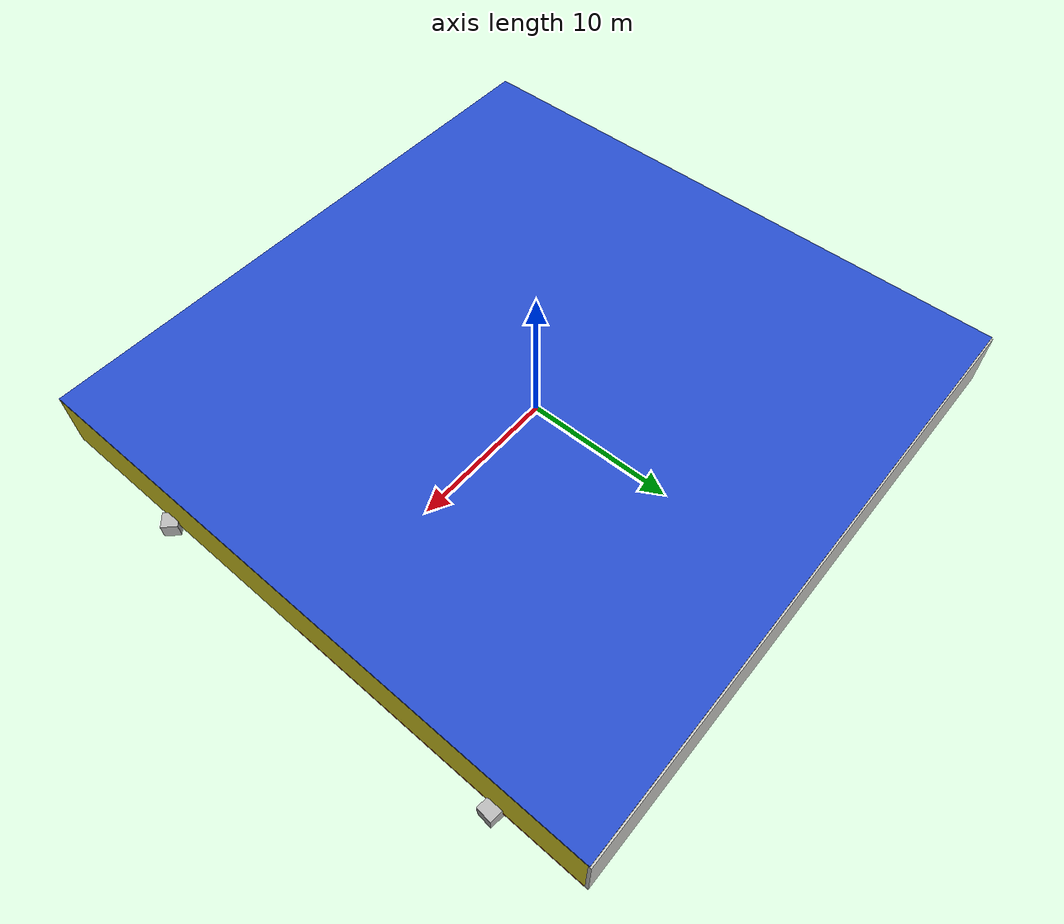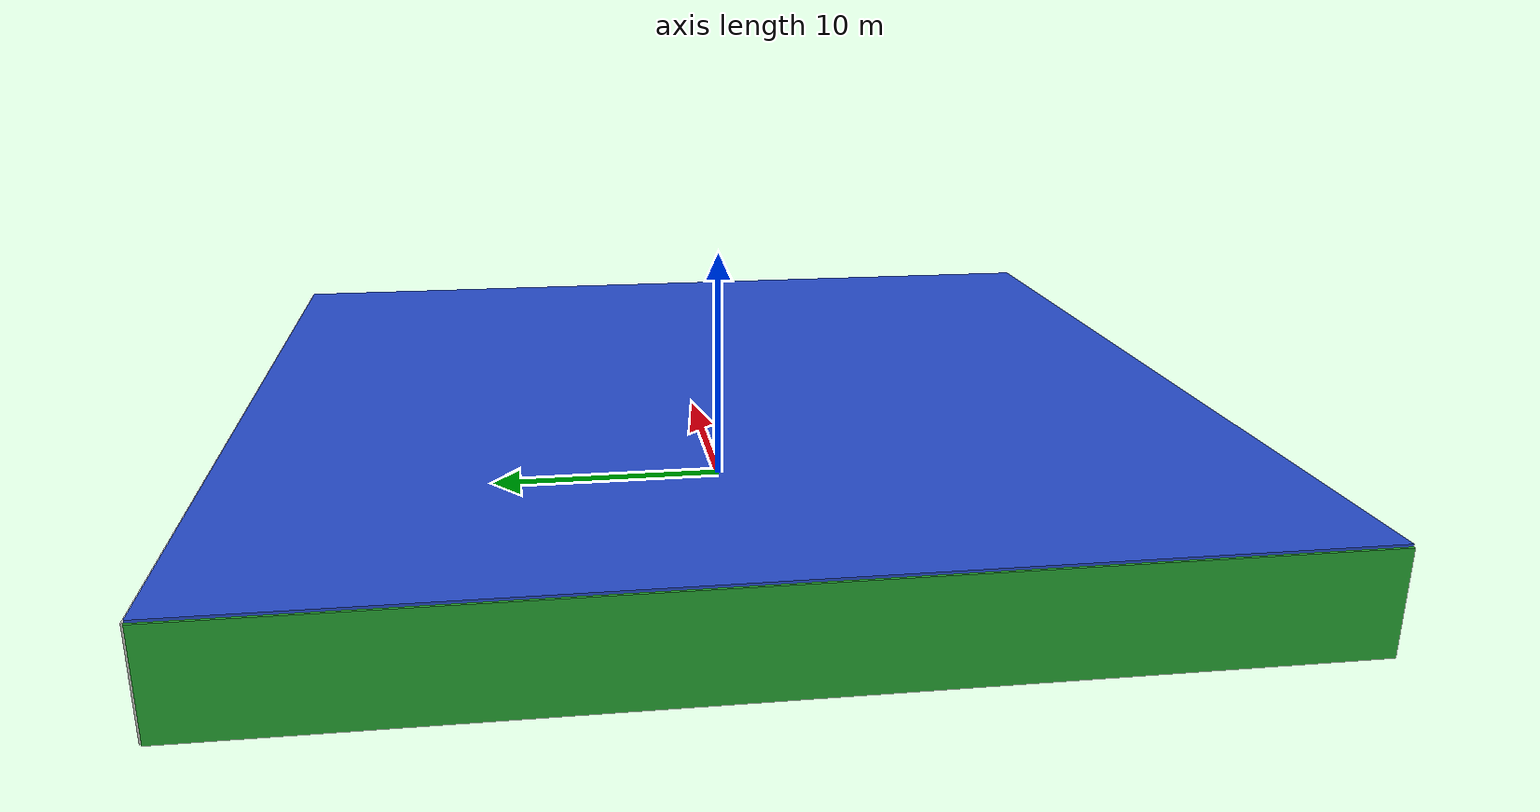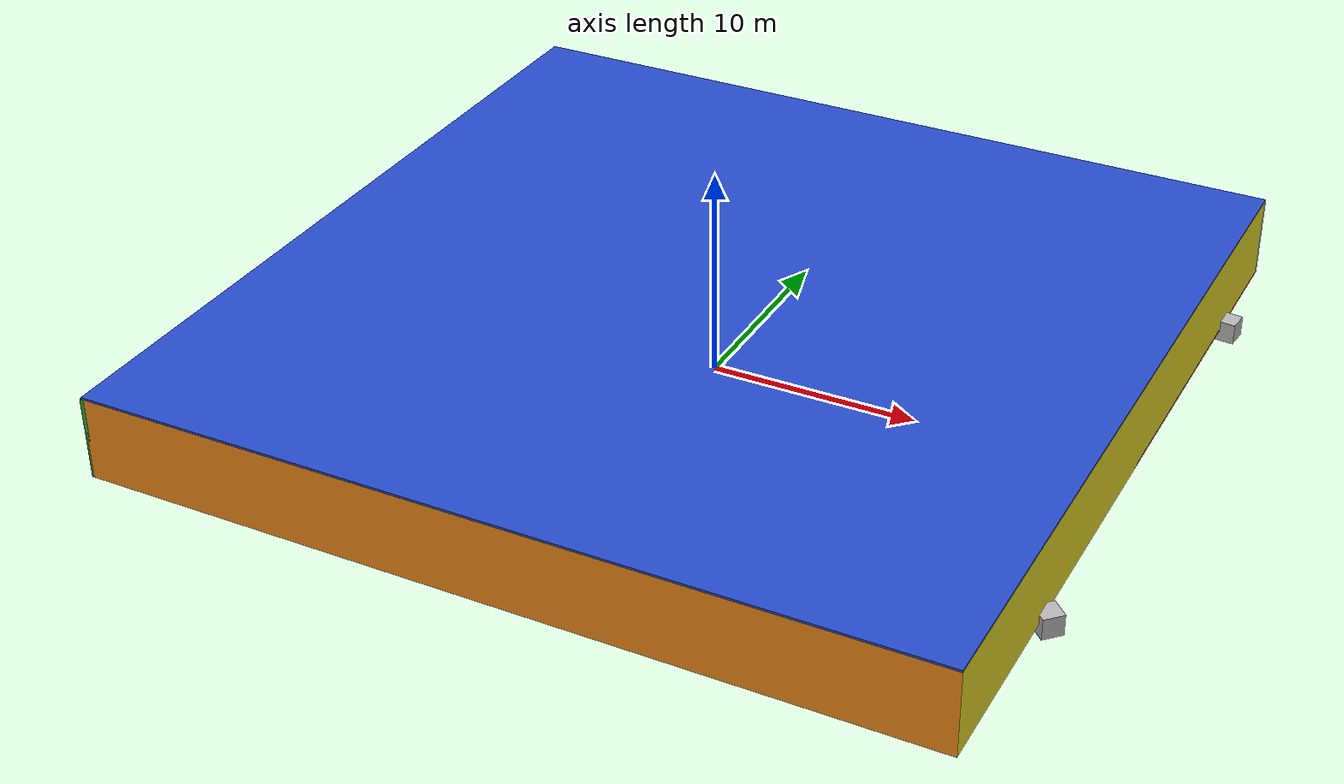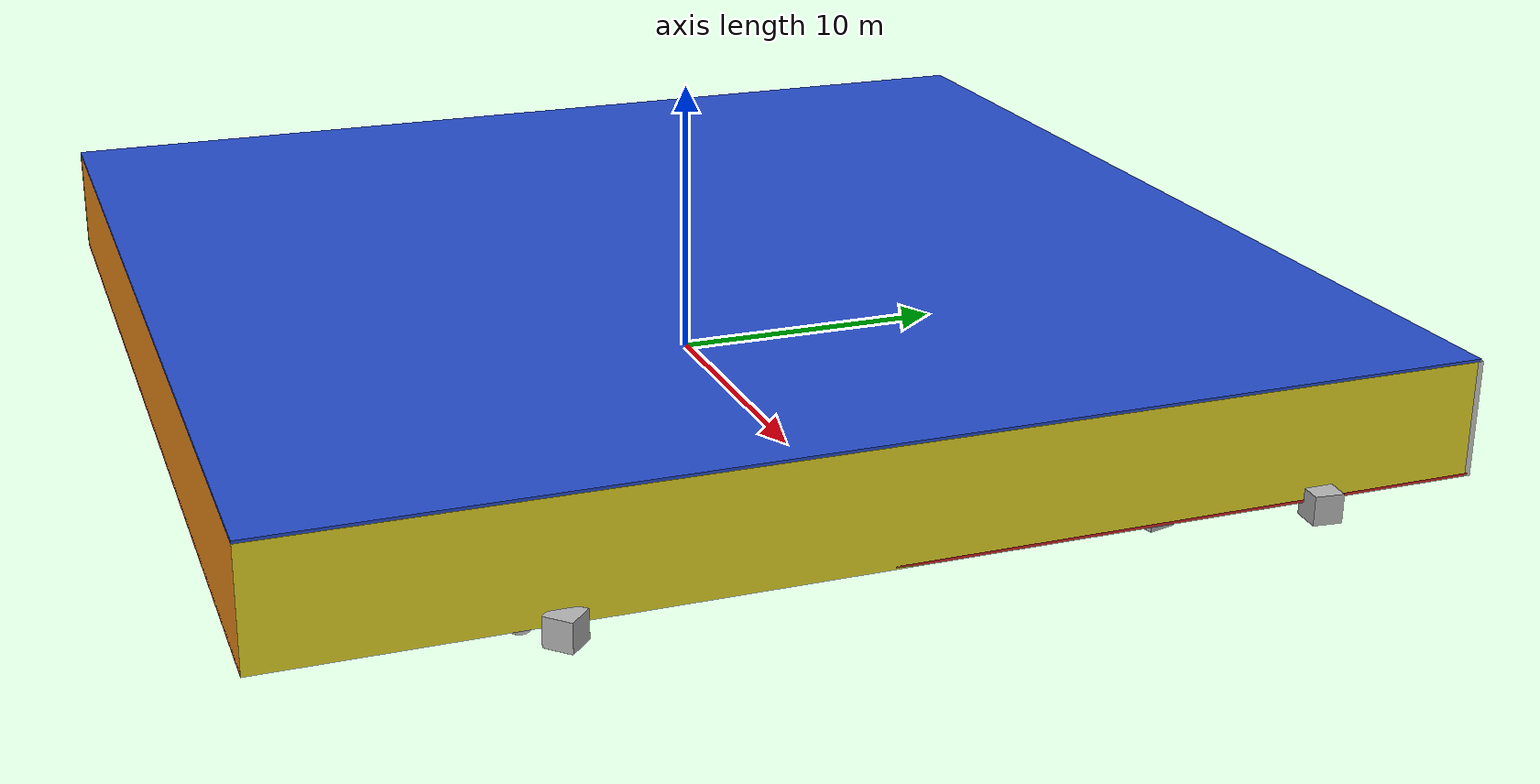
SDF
<sdf version="1.4">
 <world name="default">
  <physics type="ode">
   <max_step_size>0.001</max_step_size>
   <real_time_factor>1</real_time_factor>
   <real_time_update_rate>1000</real_time_update_rate>
   <gravity>0 0 -9.8</gravity>
  </physics>
  <scene><ambient>0.4 0.4 0.4 1</ambient><background>0.7 0.7 0.7 1</background><shadows>1</shadows></scene>
  <model name="Surrounding">
   <static>1</static>
   <link name="Ceiling">
    <collision name="Ceiling_Collision"><geometry><box><size>40 40 0.1</size></box></geometry></collision>
    <visual name="Ceiling_Visual">
     <geometry><box><size>40 40 0.1</size></box></geometry>
     <material>
      <script><uri>file://media/materials/scripts/gazebo.material</uri><name>Gazebo/BlueGlow</name></script>
     </material>
    </visual>
    <pose>0 0 4.05 0 0 0</pose>
   </link>
   <link name="Wall_South">
    <collision name="Wall_South_Collision">
     <geometry><box><size>40 0 4</size></box></geometry>
     <pose>0 0 2 0 -0 0</pose>
    </collision>
    <visual name="Wall_South_Visual">
     <pose>0 0 2 0 -0 0</pose>
     <geometry><box><size>40 0 4</size></box></geometry>
     <material>
      <script><uri>file://media/materials/scripts/gazebo.material</uri><name>Gazebo/Orange</name></script>
     </material>
    </visual>
    <velocity_decay><linear>0</linear><angular>0</angular></velocity_decay>
    <pose>0 -20 0 0 -0 0</pose>
   </link>
   <link name="Wall_East">
    <collision name="Wall_21_Collision">
     <geometry><box><size>40 0 4</size></box></geometry>
     <pose>0 0 2 0 -0 0</pose>
    </collision>
    <visual name="Wall_21_Visual">
     <pose>0 0 2 0 -0 0</pose>
     <geometry><box><size>40 0 4</size></box></geometry>
     <material>
      <script><uri>file://media/materials/scripts/gazebo.material</uri><name>Gazebo/YellowGlow</name></script>
     </material>
    </visual>
    <velocity_decay><linear>0</linear><angular>0</angular></velocity_decay>
    <pose>20 0 0 0 -0 1.5708</pose>
   </link>
   <link name="Wall_North">
    <collision name="Wall_22_Collision">
     <geometry><box><size>40 0.2 4</size></box></geometry>
     <pose>0 0 2 0 -0 0</pose>
    </collision>
    <visual name="Wall_22_Visual">
     <pose>0 0 2 0 -0 0</pose>
     <geometry><box><size>40 0.2 4</size></box></geometry>
     <material>
      <script><uri>file://media/materials/scripts/gazebo.material</uri><name>Gazebo/CeilingTiled</name></script>
     </material>
    </visual>
    <velocity_decay><linear>0</linear><angular>0</angular></velocity_decay>
    <pose>0 20 0 0 -0 0</pose>
   </link>
   <link name="Wall_West">
    <collision name="Wall_23_Collision">
     <geometry><box><size>40 0.2 4</size></box></geometry>
     <pose>0 0 2 0 -0 0</pose>
    </collision>
    <visual name="Wall_23_Visual">
     <pose>0 0 2 0 -0 0</pose>
     <geometry><box><size>40 0.2 4</size></box></geometry>
     <material>
      <script><uri>file://media/materials/scripts/gazebo.material</uri><name>Gazebo/Green</name></script>
     </material>
    </visual>
    <velocity_decay><linear>0</linear><angular>0</angular></velocity_decay>
    <pose>-20 0 0 0 0 -1.5708</pose>
   </link>
   <link name="Ground_link">
    <collision name="collision">
     <pose>0 0 .05 0 -0 0</pose>
     <geometry><box><size>40 40 0.1</size></box></geometry>
    </collision>
    <visual name="visual">
     <pose>0 0 .05 0 -0 0</pose>
     <geometry><box><size>40 40 0.1</size></box></geometry>
     <material>
      <script><uri>file://media/materials/scripts/gazebo.material</uri><name>Gazebo/Red</name></script>
     </material>
    </visual>
   </link>
   <static>1</static>
  </model>
  <spherical_coordinates>
   <surface_model>EARTH_WGS84</surface_model>
   <latitude_deg>0</latitude_deg>
   <longitude_deg>0</longitude_deg>
   <elevation>0</elevation>
   <heading_deg>0</heading_deg>
  </spherical_coordinates>
  <light name="lightball_0" type="diffuse">
   <diffuse>0.8 0.8 0.8 1</diffuse>
   <specular>0.2 0.2 0.2 1</specular>
   <attenuation>
    <range>100</range>
    <constant>0.7</constant>
    <linear>0.01</linear>
    <quadratic>0.001</quadratic>
   </attenuation>
   <direction>-0.5 0.1 -0.9</direction>
   <pose>-18.5070901006 -13.4883615081 3.37679868414 0 0 0</pose>
  </light>
  <light name="lightball_1" type="diffuse">
   <diffuse>0.8 0.8 0.8 1</diffuse>
   <specular>0.2 0.2 0.2 1</specular>
   <attenuation>
    <range>100</range>
    <constant>0.7</constant>
    <linear>0.01</linear>
    <quadratic>0.001</quadratic>
   </attenuation>
   <direction>-0.5 0.1 -0.9</direction>
   <pose>-11.9051198768 3.41816770267 2.30107671199 0 0 0</pose>
  </light>
  <light name="lightball_2" type="diffuse">
   <diffuse>0.8 0.8 0.8 1</diffuse>
   <specular>0.2 0.2 0.2 1</specular>
   <attenuation>
    <range>100</range>
    <constant>0.7</constant>
    <linear>0.01</linear>
    <quadratic>0.001</quadratic>
   </attenuation>
   <direction>-0.5 0.1 -0.9</direction>
   <pose>-14.7751131476 4.1900257064 3.39572955392 0 0 0</pose>
  </light>
  <light name="lightball_3" type="diffuse">
   <diffuse>0.8 0.8 0.8 1</diffuse>
   <specular>0.2 0.2 0.2 1</specular>
   <attenuation>
    <range>100</range>
    <constant>0.7</constant>
    <linear>0.01</linear>
    <quadratic>0.001</quadratic>
   </attenuation>
   <direction>-0.5 0.1 -0.9</direction>
   <pose>-2.81984554219 10.8544558693 0.591473071668 0 0 0</pose>
  </light>
  <light name="lightball_4" type="diffuse">
   <diffuse>0.8 0.8 0.8 1</diffuse>
   <specular>0.2 0.2 0.2 1</specular>
   <attenuation>
    <range>100</range>
    <constant>0.7</constant>
    <linear>0.01</linear>
    <quadratic>0.001</quadratic>
   </attenuation>
   <direction>-0.5 0.1 -0.9</direction>
   <pose>6.51638680773 19.5151990628 2.94567935043 0 0 0</pose>
  </light>
  <light name="lightball_5" type="diffuse">
   <diffuse>0.8 0.8 0.8 1</diffuse>
   <specular>0.2 0.2 0.2 1</specular>
   <attenuation>
    <range>100</range>
    <constant>0.7</constant>
    <linear>0.01</linear>
    <quadratic>0.001</quadratic>
   </attenuation>
   <direction>-0.5 0.1 -0.9</direction>
   <pose>14.1692398645 5.8196096974 2.44699378487 0 0 0</pose>
  </light>
  <light name="lightball_6" type="diffuse">
   <diffuse>0.8 0.8 0.8 1</diffuse>
   <specular>0.2 0.2 0.2 1</specular>
   <attenuation>
    <range>100</range>
    <constant>0.7</constant>
    <linear>0.01</linear>
    <quadratic>0.001</quadratic>
   </attenuation>
   <direction>-0.5 0.1 -0.9</direction>
   <pose>-0.518078770777 15.6305931422 1.7656335063 0 0 0</pose>
  </light>
  <light name="lightball_7" type="diffuse">
   <diffuse>0.8 0.8 0.8 1</diffuse>
   <specular>0.2 0.2 0.2 1</specular>
   <attenuation>
    <range>100</range>
    <constant>0.7</constant>
    <linear>0.01</linear>
    <quadratic>0.001</quadratic>
   </attenuation>
   <direction>-0.5 0.1 -0.9</direction>
   <pose>-0.649507739365 5.77117134661 1.76922618947 0 0 0</pose>
  </light>
  <light name="lightball_8" type="diffuse">
   <diffuse>0.8 0.8 0.8 1</diffuse>
   <specular>0.2 0.2 0.2 1</specular>
   <attenuation>
    <range>100</range>
    <constant>0.7</constant>
    <linear>0.01</linear>
    <quadratic>0.001</quadratic>
   </attenuation>
   <direction>-0.5 0.1 -0.9</direction>
   <pose>-1.42709245649 -0.297169827651 0.854565664512 0 0 0</pose>
  </light>
  <light name="lightball_9" type="diffuse">
   <diffuse>0.8 0.8 0.8 1</diffuse>
   <specular>0.2 0.2 0.2 1</specular>
   <attenuation>
    <range>100</range>
    <constant>0.7</constant>
    <linear>0.01</linear>
    <quadratic>0.001</quadratic>
   </attenuation>
   <direction>-0.5 0.1 -0.9</direction>
   <pose>-12.2697191801 -4.65934042174 0.591194738603 0 0 0</pose>
  </light>
  <light name="lightball_10" type="diffuse">
   <diffuse>0.8 0.8 0.8 1</diffuse>
   <specular>0.2 0.2 0.2 1</specular>
   <attenuation>
    <range>100</range>
    <constant>0.7</constant>
    <linear>0.01</linear>
    <quadratic>0.001</quadratic>
   </attenuation>
   <direction>-0.5 0.1 -0.9</direction>
   <pose>12.7249384493 17.7363090514 3.14597669128 0 0 0</pose>
  </light>
  <include><uri>model://cabinet</uri><pose>-16.5375367996 13.2960169859 0 0 0 2.21324685783</pose></include>
  <include><uri>model://table</uri><pose>-15.007232126 -7.69373313841 0 0 0 2.20671267828</pose></include>
  <include>
   <uri>model://construction_cone</uri>
   <pose>-15.2301693288 15.29017282 0 0 0 1.90880121021</pose>
  </include>
  <include><uri>model://cabinet</uri><pose>-13.9315299232 17.7407982427 0 0 0 1.04409101917</pose></include>
  <include>
   <uri>model://textured_shapes</uri>
   <pose>-11.9867333516 3.97964513421 0 0 0 1.10591149112</pose>
  </include>
  <include><uri>model://cabinet</uri><pose>-7.77159714313 -8.44049373947 0 0 0 2.75015723133</pose></include>
  <include><uri>model://table</uri><pose>-7.65075202565 2.52277157214 0 0 0 2.90704081693</pose></include>
  <include>
   <uri>model://construction_cone</uri>
   <pose>-7.56719557897 19.0699744096 0 0 0 0.169954533746</pose>
  </include>
  <include><uri>model://cabinet</uri><pose>-6.50552162189 -3.03212655362 0 0 0 1.9306646196</pose></include>
  <include><uri>model://table</uri><pose>-6.44978137206 3.6077697125 0 0 0 2.66292052287</pose></include>
  <include><uri>model://cabinet</uri><pose>-4.9941127919 19.6880625129 0 0 0 0.477249208522</pose></include>
  <include><uri>model://cabinet</uri><pose>-1.9839980312 -18.1852235187 0 0 0 1.76312283447</pose></include>
  <include>
   <uri>model://robocup_3Dsim_goal</uri>
   <pose>-2.62498848066 -13.6934541251 0 0 0 0.832716102345</pose>
  </include>
  <include>
   <uri>model://textured_shapes</uri>
   <pose>1.5189948478 -10.6254128137 0 0 0 1.65085615437</pose>
  </include>
  <include>
   <uri>model://construction_cone</uri>
   <pose>1.63465054382 -9.48028582269 0 0 0 2.12952827711</pose>
  </include>
  <include><uri>model://cabinet</uri><pose>0.626592137042 -4.84664863741 0 0 0 1.11876555757</pose></include>
  <include>
   <uri>model://textured_shapes</uri>
   <pose>0.982818710416 2.89806851623 0 0 0 2.50685494109</pose>
  </include>
  <include>
   <uri>model://robocup_3Dsim_goal</uri>
   <pose>3.81375128143 2.47642900768 0 0 0 0.739277580161</pose>
  </include>
  <include>
   <uri>model://robocup_3Dsim_goal</uri>
   <pose>6.49858061758 -18.3278166611 0 0 0 1.94019836571</pose>
  </include>
  <include>
   <uri>model://robocup_3Dsim_goal</uri>
   <pose>6.11143521313 -4.79199627868 0 0 0 2.13110324093</pose>
  </include>
  <include><uri>model://cabinet</uri><pose>6.81173071493 13.4439641365 0 0 0 3.00379069561</pose></include>
  <include><uri>model://cabinet</uri><pose>8.80839281848 2.48314408223 0 0 0 0.502924306286</pose></include>
  <include><uri>model://cabinet</uri><pose>11.6444711272 -14.5957362154 0 0 0 2.69178658958</pose></include>
  <include><uri>model://cabinet</uri><pose>15.7367139655 -17.4142070813 0 0 0 0.583314160846</pose></include>
  <include>
   <uri>model://robocup_3Dsim_goal</uri>
   <pose>15.4525078068 3.15865353408 0 0 0 1.40493336304</pose>
  </include>
  <include>
   <uri>model://construction_cone</uri>
   <pose>14.678574716 8.78296683483 0 0 0 0.634662547954</pose>
  </include>
  <include>
   <uri>model://textured_shapes</uri>
   <pose>19.1736980051 -11.9075999268 0 0 0 2.3569096557</pose>
  </include>
  <include>
   <uri>model://construction_cone</uri>
   <pose>19.6900629362 -1.96512810755 0 0 0 3.08000917311</pose>
  </include>
  <include><uri>model://cabinet</uri><pose>17.8779804964 3.70097715218 0 0 0 0.716719154587</pose></include>
  <include>
   <uri>model://textured_shapes</uri>
   <pose>17.3370847765 8.60357786235 0 0 0 1.81339845991</pose>
  </include>
  <include>
   <uri>model://textured_shapes</uri>
   <pose>18.7713983202 14.3756828408 0 0 0 1.46922399984</pose>
  </include>
 </world>
</sdf>

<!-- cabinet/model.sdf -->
<sdf version="1.5">
  <model name="cabinet">
    <static>true</static>
    <link name="cabinet_bottom_plate">
      <inertial>
        <pose>0 0 -1 0 0 0</pose>
        <inertia>
          <ixx>2.050000</ixx>
          <ixy>0</ixy>
          <ixz>0</ixz>
          <iyy>2.050000</iyy>
          <iyz>0</iyz>
          <izz>2.050000</izz>
        </inertia>
        <mass>25.000000</mass>
      </inertial>
      <collision name="cabinet_bottom_plate_geom">
        <pose>0 0 0.010000 0 0 0</pose>
        <geometry>
          <box>
            <size>0.450000 0.450000 0.020000</size>
          </box>
        </geometry>
      </collision>
      <visual name="cabinet_bottom_plate_geom_visual">
        <pose>0 0 0.010000 0 0 0</pose>
        <geometry>
          <box>
            <size>0.450000 0.450000 0.020000</size>
          </box>
        </geometry>
        <material>
          <script>
            <uri>model://media/materials/scripts/gazebo.material</uri>
            <name>Gazebo/Wood</name>
          </script>
        </material>
      </visual>
      <collision name="cabinet_bottom_plate_geom_cabinet_back_plate">
        <pose>0.235000 0 0.510000 0 0 0</pose>
        <geometry>
          <box>
            <size>0.020000 0.450000 1.020000</size>
          </box>
        </geometry>
      </collision>
      <visual name="cabinet_bottom_plate_geom_cabinet_back_plate_visual">
        <pose>0.235000 0 0.510000 0 0 0</pose>
        <geometry>
          <box>
            <size>0.020000 0.450000 1.020000</size>
          </box>
        </geometry>
        <material>
          <script>
            <uri>model://media/materials/scripts/gazebo.material</uri>
            <name>Gazebo/Wood</name>
          </script>
        </material>
      </visual>
      <collision name="cabinet_bottom_plate_geom_cabinet_left_plate">
        <pose>0 0.235000 0.510000 0 0 0</pose>
        <geometry>
          <box>
            <size>0.450000 0.020000 1.020000</size>
          </box>
        </geometry>
      </collision>
      <visual name="cabinet_bottom_plate_geom_cabinet_left_plate_visual">
        <pose>0 0.235000 0.510000 0 0 0</pose>
        <geometry>
          <box>
            <size>0.450000 0.020000 1.020000</size>
          </box>
        </geometry>
        <material>
          <script>
            <uri>model://media/materials/scripts/gazebo.material</uri>
            <name>Gazebo/Wood</name>
          </script>
        </material>
      </visual>
      <collision name="cabinet_bottom_plate_geom_cabinet_middle_plate">
        <pose>0 0 0.510000 0 0 0</pose>
        <geometry>
          <box>
            <size>0.450000 0.450000 0.020000</size>
          </box>
        </geometry>
      </collision>
      <visual name="cabinet_bottom_plate_geom_cabinet_middle_plate_visual">
        <pose>0 0 0.510000 0 0 0</pose>
        <geometry>
          <box>
            <size>0.450000 0.450000 0.020000</size>
          </box>
        </geometry>
        <material>
          <script>
            <uri>model://media/materials/scripts/gazebo.material</uri>
            <name>Gazebo/Wood</name>
          </script>
        </material>
      </visual>
      <collision name="cabinet_bottom_plate_geom_cabinet_right_plate">
        <pose>0 -0.235000 0.510000 0 0 0</pose>
        <geometry>
          <box>
            <size>0.450000 0.020000 1.020000</size>
          </box>
        </geometry>
      </collision>
      <visual name="cabinet_bottom_plate_geom_cabinet_right_plate_visual">
        <pose>0 -0.235000 0.510000 0 0 0</pose>
        <geometry>
          <box>
            <size>0.450000 0.020000 1.020000</size>
          </box>
        </geometry>
        <material>
          <script>
            <uri>model://media/materials/scripts/gazebo.material</uri>
            <name>Gazebo/Wood</name>
          </script>
        </material>
      </visual>
      <collision name="cabinet_bottom_plate_geom_cabinet_top_plate">
        <pose>0 0 1.010000 0 0 0</pose>
        <geometry>
          <box>
            <size>0.450000 0.450000 0.020000</size>
          </box>
        </geometry>
      </collision>
      <visual name="cabinet_bottom_plate_geom_cabinet_top_plate_visual">
        <pose>0 0 1.010000 0 0 0</pose>
        <geometry>
          <box>
            <size>0.450000 0.450000 0.020000</size>
          </box>
        </geometry>
        <material>
          <script>
            <uri>model://media/materials/scripts/gazebo.material</uri>
            <name>Gazebo/Wood</name>
          </script>
        </material>
      </visual>
    </link>
  </model>
</sdf>

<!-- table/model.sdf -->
<sdf version="1.5">
  <model name="table">
    <static>true</static>
    <link name="link">
      <collision name="surface">
        <pose>0 0 1.0 0 0 0</pose>
        <geometry>
          <box>
            <size>1.5 0.8 0.03</size>
          </box>
        </geometry>
        <surface>
          <friction>
            <ode>
              <mu>0.6</mu>
              <mu2>0.6</mu2>
            </ode>
          </friction>
        </surface>
      </collision>
      <visual name="visual1">
        <pose>0 0 1.0 0 0 0</pose>
        <geometry>
          <box>
            <size>1.5 0.8 0.03</size>
          </box>
        </geometry>
        <material>
          <script>
            <uri>model://media/materials/scripts/gazebo.material</uri>
            <name>Gazebo/Wood</name>
          </script>
        </material>
      </visual>
      <collision name="front_left_leg">
        <pose>0.68 0.38 0.5 0 0 0</pose>
        <geometry>
          <cylinder>
            <radius>0.02</radius>
            <length>1.0</length>
          </cylinder>
        </geometry>
      </collision>
      <visual name="front_left_leg">
        <pose>0.68 0.38 0.5 0 0 0</pose>
        <geometry>
          <cylinder>
            <radius>0.02</radius>
            <length>1.0</length>
          </cylinder>
        </geometry>
        <material>
          <script>
            <uri>model://media/materials/scripts/gazebo.material</uri>
            <name>Gazebo/Grey</name>
          </script>
        </material>
      </visual>
      <collision name="front_right_leg">
        <pose>0.68 -0.38 0.5 0 0 0</pose>
        <geometry>
          <cylinder>
            <radius>0.02</radius>
            <length>1.0</length>
          </cylinder>
        </geometry>
      </collision>
      <visual name="front_right_leg">
        <pose>0.68 -0.38 0.5 0 0 0</pose>
        <geometry>
          <cylinder>
            <radius>0.02</radius>
            <length>1.0</length>
          </cylinder>
        </geometry>
        <material>
          <script>
            <uri>model://media/materials/scripts/gazebo.material</uri>
            <name>Gazebo/Grey</name>
          </script>
        </material>
      </visual>
      <collision name="back_right_leg">
        <pose>-0.68 -0.38 0.5 0 0 0</pose>
        <geometry>
          <cylinder>
            <radius>0.02</radius>
            <length>1.0</length>
          </cylinder>
        </geometry>
      </collision>
      <visual name="back_right_leg">
        <pose>-0.68 -0.38 0.5 0 0 0</pose>
        <geometry>
          <cylinder>
            <radius>0.02</radius>
            <length>1.0</length>
          </cylinder>
        </geometry>
        <material>
          <script>
            <uri>model://media/materials/scripts/gazebo.material</uri>
            <name>Gazebo/Grey</name>
          </script>
        </material>
      </visual>
      <collision name="back_left_leg">
        <pose>-0.68 0.38 0.5 0 0 0</pose>
        <geometry>
          <cylinder>
            <radius>0.02</radius>
            <length>1.0</length>
          </cylinder>
        </geometry>
      </collision>
      <visual name="back_left_leg">
        <pose>-0.68 0.38 0.5 0 0 0</pose>
        <geometry>
          <cylinder>
            <radius>0.02</radius>
            <length>1.0</length>
          </cylinder>
        </geometry>
        <material>
          <script>
            <uri>model://media/materials/scripts/gazebo.material</uri>
            <name>Gazebo/Grey</name>
          </script>
        </material>
      </visual>
    </link>
  </model>
</sdf>

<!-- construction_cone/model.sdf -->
<sdf version="1.5">
  <model name="Construction Cone">
    <link name="link">
      <collision name="collision">
        <geometry>
          <mesh>
            <scale>10 10 10</scale>
            <uri>file://isr-testbed/construction_cone/meshes/construction_cone.dae</uri>
          </mesh>
        </geometry>
      </collision>
      <visual name="visual">
        <geometry>
          <mesh>
            <scale>10 10 10</scale>
            <uri>file://isr-testbed/construction_cone/meshes/construction_cone.dae</uri>
          </mesh>
        </geometry>
      </visual>
    </link>
  </model>
</sdf>

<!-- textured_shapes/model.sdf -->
<sdf version="1.6">
  <model name="textured_shapes">
    <pose>0 0 0.5 0 0 0</pose>
    <link name="box">
      <pose>0 -1.5 0 0 0 0</pose>
      <collision name="collision">
        <geometry>
          <box>
            <size>1 1 1</size>
          </box>
        </geometry>
      </collision>
      <visual name="visual">
        <geometry>
          <box>
            <size>1 1 1</size>
          </box>
        </geometry>
        <material>
          <script>
            <uri>model://../model_source/models/textured_shapes/materials/scripts</uri>
            <uri>model://../model_source/models/textured_shapes/materials/textures</uri>
            <name>TexturedShape/Squares</name>
          </script>
        </material>
      </visual>
    </link>
    <link name="sphere">
      <collision name="collision">
        <geometry>
          <sphere>
            <radius>0.5</radius>
          </sphere>
        </geometry>
      </collision>
      <visual name="visual">
        <geometry>
          <sphere>
            <radius>0.5</radius>
          </sphere>
        </geometry>
        <material>
          <script>
            <uri>model://../model_source/models/textured_shapes/materials/scripts</uri>
            <uri>model://../model_source/models/textured_shapes/materials/textures</uri>
            <name>TexturedShape/Squares</name>
          </script>
        </material>
      </visual>
    </link>
    <link name="cylinder">
      <pose>0 1.5 0 0 0 0</pose>
      <collision name="collision">
        <geometry>
          <cylinder>
            <radius>0.5</radius>
            <length>1</length>
          </cylinder>
        </geometry>
      </collision>
      <visual name="visual">
        <geometry>
          <cylinder>
            <radius>0.5</radius>
            <length>1</length>
          </cylinder>
        </geometry>
        <material>
          <script>
            <uri>model://../model_source/models/textured_shapes/materials/scripts</uri>
            <uri>model://../model_source/models/textured_shapes/materials/textures</uri>
            <name>TexturedShape/Squares</name>
          </script>
        </material>
      </visual>
    </link>
  </model>
</sdf>

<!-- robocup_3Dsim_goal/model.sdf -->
<sdf version="1.5">
  <model name="robocup_3d_goal">
    <static>true</static>
    <link name="left_post">
      <pose>0 1.05 0.45 0 0 0</pose>
      <collision name="collision">
        <geometry>
          <cylinder>
            <radius>0.05</radius>
            <length>0.9</length>
          </cylinder>
        </geometry>
      </collision>
      <visual name="visual">
        <geometry>
          <cylinder>
            <radius>0.05</radius>
            <length>0.9</length>
          </cylinder>
        </geometry>
        <material>
          <script>
            <uri>file://media/materials/scripts/gazebo.material</uri>
            <name>Gazebo/ZincYellow</name>
          </script>
        </material>
      </visual>
    </link>
    <link name="left_support_horiz_lower">
      <pose>0.30 1.05 0.01 0 0 0</pose>
      <collision name="collision">
        <geometry>
          <box>
            <size>0.50 0.02 0.02</size>
          </box>
        </geometry>
      </collision>
      <visual name="visual">
        <geometry>
          <box>
            <size>0.50 0.02 0.02</size>
          </box>
        </geometry>
        <material>
          <script>
            <uri>file://media/materials/scripts/gazebo.material</uri>
            <name>Gazebo/White</name>
          </script>
        </material>
      </visual>
    </link>
    <link name="left_support_horiz_upper">
      <pose>0.30 1.05 0.79 0 0 0</pose>
      <collision name="collision">
        <geometry>
          <box>
            <size>0.50 0.02 0.02</size>
          </box>
        </geometry>
      </collision>
      <visual name="visual">
        <geometry>
          <box>
            <size>0.50 0.02 0.02</size>
          </box>
        </geometry>
        <material>
          <script>
            <uri>file://media/materials/scripts/gazebo.material</uri>
            <name>Gazebo/White</name>
          </script>
        </material>
      </visual>
    </link>
    <link name="left_support_vertical">
      <pose>0.56 1.05 0.4 0 1.5708 0</pose>
      <collision name="collision">
        <geometry>
          <box>
            <size>0.80 0.02 0.02</size>
          </box>
        </geometry>
      </collision>
      <visual name="visual">
        <geometry>
          <box>
            <size>0.80 0.02 0.02</size>
          </box>
        </geometry>
        <material>
          <script>
            <uri>file://media/materials/scripts/gazebo.material</uri>
            <name>Gazebo/White</name>
          </script>
        </material>
      </visual>
    </link>
    <link name="right_support_horiz_lower">
      <pose>0.30 -1.05 0.01 0 0 0</pose>
      <collision name="collision">
        <geometry>
          <box>
            <size>0.50 0.02 0.02</size>
          </box>
        </geometry>
      </collision>
      <visual name="visual">
        <geometry>
          <box>
            <size>0.50 0.02 0.02</size>
          </box>
        </geometry>
        <material>
          <script>
            <uri>file://media/materials/scripts/gazebo.material</uri>
            <name>Gazebo/White</name>
          </script>
        </material>
      </visual>
    </link>
    <link name="right_support_horiz_upper">
      <pose>0.30 -1.05 0.79 0 0 0</pose>
      <collision name="collision">
        <geometry>
          <box>
            <size>0.50 0.02 0.02</size>
          </box>
        </geometry>
      </collision>
      <visual name="visual">
        <geometry>
          <box>
            <size>0.50 0.02 0.02</size>
          </box>
        </geometry>
        <material>
          <script>
            <uri>file://media/materials/scripts/gazebo.material</uri>
            <name>Gazebo/White</name>
          </script>
        </material>
      </visual>
    </link>
    <link name="right_support_vertical">
      <pose>0.56 -1.05 0.4 0 1.5708 0</pose>
      <collision name="collision">
        <geometry>
          <box>
            <size>0.80 0.02 0.02</size>
          </box>
        </geometry>
      </collision>
      <visual name="visual">
        <geometry>
          <box>
            <size>0.80 0.02 0.02</size>
          </box>
        </geometry>
        <material>
          <script>
            <uri>file://media/materials/scripts/gazebo.material</uri>
            <name>Gazebo/White</name>
          </script>
        </material>
      </visual>
    </link>
    <link name="center_support_horiz_lower">
      <pose>0.56 0 0.01 0 1.5708 0</pose>
      <collision name="collision">
        <geometry>
          <box>
            <size>0.02 2.08 0.02</size>
          </box>
        </geometry>
      </collision>
      <visual name="visual">
        <geometry>
          <box>
            <size>0.02 2.08 0.02</size>
          </box>
        </geometry>
        <material>
          <script>
            <uri>file://media/materials/scripts/gazebo.material</uri>
            <name>Gazebo/White</name>
          </script>
        </material>
      </visual>
    </link>
    <link name="center_support_horiz_upper">
      <pose>0.56 0 0.79 0 1.5708 0</pose>
      <collision name="collision">
        <geometry>
          <box>
            <size>0.02 2.08 0.02</size>
          </box>
        </geometry>
      </collision>
      <visual name="visual">
        <geometry>
          <box>
            <size>0.02 2.08 0.02</size>
          </box>
        </geometry>
        <material>
          <script>
            <uri>file://media/materials/scripts/gazebo.material</uri>
            <name>Gazebo/White</name>
          </script>
        </material>
      </visual>
    </link>
    <link name="right_post">
      <pose>0 -1.05 0.45 0 0 0</pose>
      <collision name="collision">
        <geometry>
          <cylinder>
            <radius>0.05</radius>
            <length>0.9</length>
          </cylinder>
        </geometry>
      </collision>
      <visual name="visual">
        <geometry>
          <cylinder>
            <radius>0.05</radius>
            <length>0.9</length>
          </cylinder>
        </geometry>
        <material>
          <script>
            <uri>file://media/materials/scripts/gazebo.material</uri>
            <name>Gazebo/ZincYellow</name>
          </script>
        </material>
      </visual>
    </link>
    <link name="crossbar">
      <pose>0 0 0.85 1.57 1.57 0</pose>
      <collision name="collision">
        <geometry>
          <cylinder>
            <radius>0.05</radius>
            <length>2.0</length>
          </cylinder>
        </geometry>
      </collision>
      <visual name="visual">
        <geometry>
          <cylinder>
            <radius>0.05</radius>
            <length>2.0</length>
          </cylinder>
        </geometry>
        <material>
          <script>
            <uri>file://media/materials/scripts/gazebo.material</uri>
            <name>Gazebo/ZincYellow</name>
          </script>
        </material>
      </visual>
    </link>
    <link name="center_net">
      <pose>0.56 0 0.40 0 0 0</pose>
      <collision name="collision">
        <geometry>
          <box>
            <size>0.01 2.1 0.80</size>
          </box>
        </geometry>
      </collision>
      <visual name="visual">
        <geometry>
          <box>
            <size>0.01 2.1 0.80</size>
          </box>
        </geometry>
        <material>
          <script>
            <uri>model://../model_source/models/robocup09_spl_field/materials/scripts/</uri>
            <uri>model://../model_source/models/robocup09_spl_field/materials/textures/</uri>
            <name>RoboCup/Net</name>
          </script>
        </material>
      </visual>
    </link>
    <link name="left_net">
      <pose>0.30 1.05 0.40 0 0 0</pose>
      <collision name="collision">
        <geometry>
          <box>
            <size>0.50 0.01 0.76</size>
          </box>
        </geometry>
      </collision>
      <visual name="visual">
        <geometry>
          <box>
            <size>0.50 0.01 0.76</size>
          </box>
        </geometry>
        <material>
          <script>
            <uri>model://../model_source/models/robocup09_spl_field/materials/scripts/</uri>
            <uri>model://../model_source/models/robocup09_spl_field/materials/textures/</uri>
            <name>RoboCup/Net</name>
          </script>
        </material>
      </visual>
    </link>
    <link name="right_net">
      <pose>0.30 -1.05 0.40 0 0 0</pose>
      <collision name="collision">
        <geometry>
          <box>
            <size>0.50 0.01 0.76</size>
          </box>
        </geometry>
      </collision>
      <visual name="visual">
        <geometry>
          <box>
            <size>0.50 0.01 0.76</size>
          </box>
        </geometry>
        <material>
          <script>
            <uri>model://../model_source/models/robocup09_spl_field/materials/scripts/</uri>
            <uri>model://../model_source/models/robocup09_spl_field/materials/textures/</uri>
            <name>RoboCup/Net</name>
          </script>
        </material>
      </visual>
    </link>
  </model>
</sdf>
